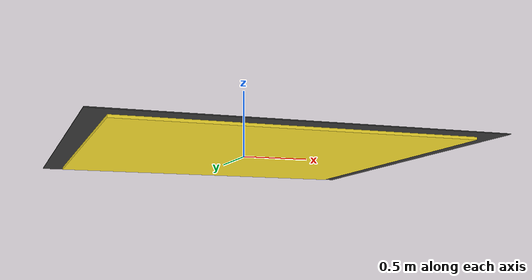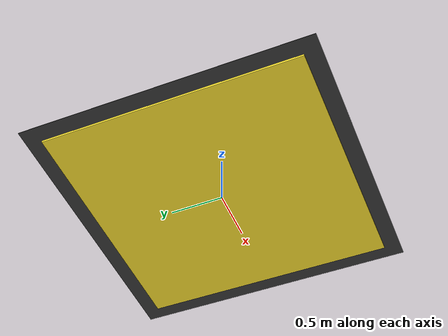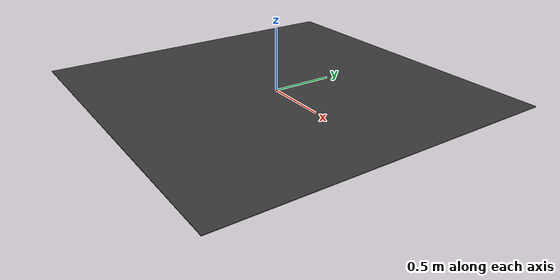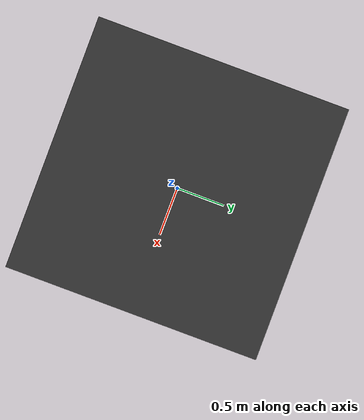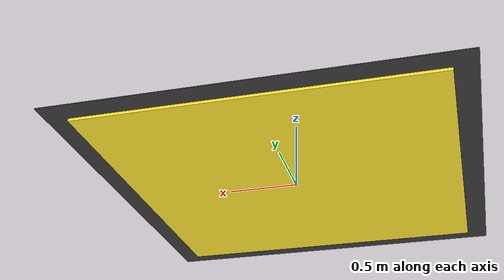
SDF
<?xml version="1.0" ?>
<sdf version="1.6">
  <model name="vln_finish_zone">
    <static>true</static>
    <link name="link">
      <collision name="collision">
        <pose>0 0 0.01 0 0 0</pose>
        <geometry>
          <box>
            <size>2.4 2.4 0.02</size>
          </box>
        </geometry>
      </collision>
      <visual name="fill">
        <pose>0 0 0.011 0 0 0</pose>
        <geometry>
          <box>
            <size>2.4 2.4 0.02</size>
          </box>
        </geometry>
        <material>
          <ambient>0.92 0.82 0.12 1</ambient>
          <diffuse>0.98 0.88 0.18 1</diffuse>
        </material>
      </visual>
      <visual name="border">
        <pose>0 0 0.023 0 0 0</pose>
        <geometry>
          <box>
            <size>2.7 2.7 0.006</size>
          </box>
        </geometry>
        <material>
          <ambient>0.18 0.18 0.18 1</ambient>
          <diffuse>0.22 0.22 0.22 1</diffuse>
        </material>
      </visual>
    </link>
  </model>
</sdf>
